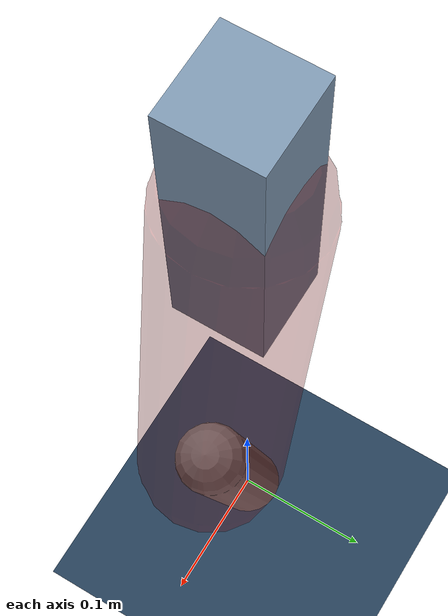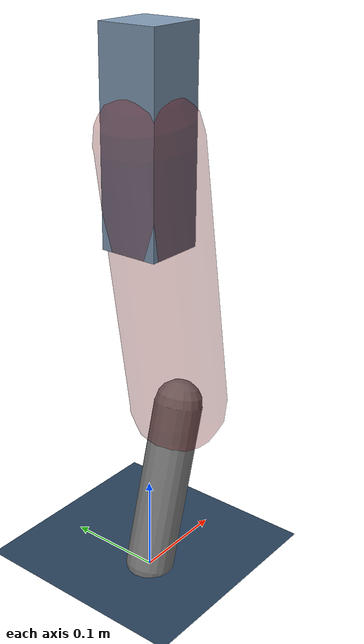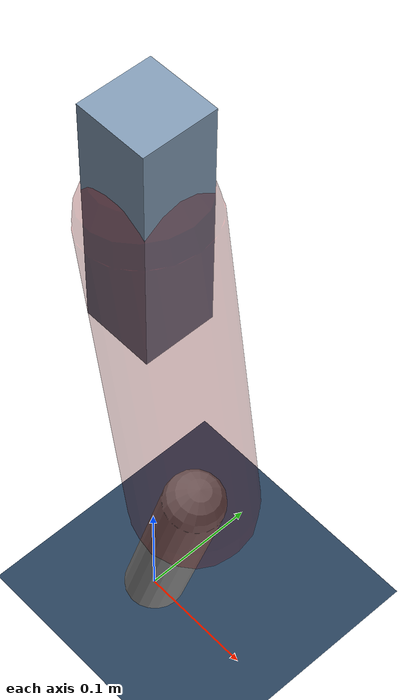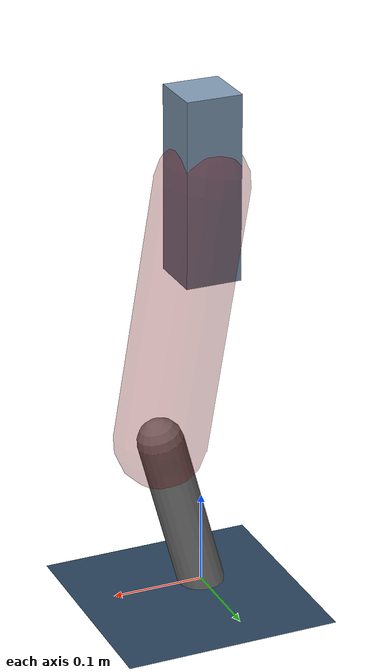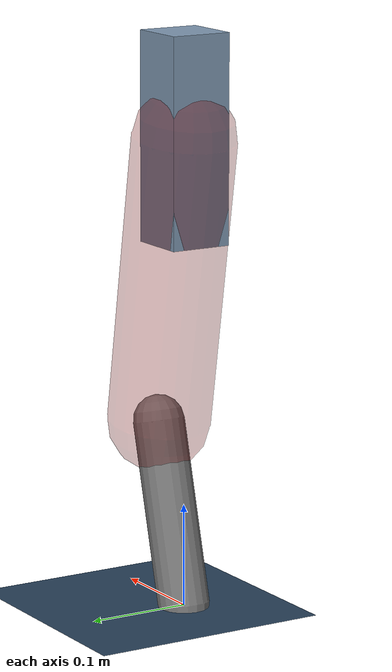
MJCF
<mujoco model="Hopper2D">
	<compiler inertiafromgeom="true" angle="radian" />
	<option timestep="0.001" integrator="implicit" cone="elliptic" solver="Newton" tolerance="1e-10" />

	<default>
		<geom contype="1" conaffinity="1" condim="3" friction="2 0.005 0.0001" solref="0.005 1" />
		<joint limited="true" damping="0.1" />
	</default>

	<asset>
		<texture name="skybox" type="skybox" builtin="gradient" rgb1=".4 .6 .8" rgb2="0 0 0" width="800" height="800" />
		<texture name="grid" type="2d" builtin="checker" rgb1=".1 .2 .3" rgb2=".2 .3 .4" width="300" height="300" mark="edge" markrgb=".2 .3 .4" />
		<material name="ground" texture="grid" texrepeat="1 1" texuniform="true" reflectance="0.1" />
		<material name="leg" rgba="0.5 0.6 0.7 1" />
	</asset>

	<worldbody>

		<geom name="floor" type="plane" size="5 5 0.25" material="ground" />

		<light directional="false" diffuse="0.8 0.8 0.8" specular="0.3 0.3 0.3" pos="0 0 2" dir="0 0 -1" />
		<light mode="targetbodycom" target="base" directional="false" diffuse="0.8 0.8 0.8" specular="0.3 0.3 0.3" pos="0 0 2" dir="0 0 -1" />

		<camera name="fixed" pos="0 -2 1" xyaxes="1 0 0 0 0 1" />
		<camera name="tracking" mode="trackcom" pos="0 -3 1" />

		<body name="root" pos="0 0 0.4546938214348778">
			<joint name="slide_x" type="slide" axis="1 0 0" range="-100 100" />
			<joint name="slide_z" type="slide" axis="0 0 1" range="0 10" />

			<body name="base" pos="0 0 0">
				<geom name="torso" type="box" size="0.03 0.03 0.1" mass="1.98" material="leg" />

				<body name="link1" pos="0 0 0" euler="0 1.406347680734463 0">
					<joint type="hinge" axis="0 -1 0" pos="0 0 0" name="hinge1" limited="true" range="-3.14 3.14" stiffness="0" damping="0.1" />
					<geom name="thigh" type="capsule" fromto="0 0 0 0.284915694172313 0 0" size="0.05" rgba="0.5 0 0 0.3" mass="0.9481808048480138" />

					<body name="link2" pos="0.284915694172313 0 0" euler="0 0.4268993961907409 0">
						<joint type="hinge" axis="0 -1 0" pos="0 0 0" name="hinge2" limited="true" range="-3.14 3.14" stiffness="0" damping="0.1" />
						<geom name="shank" type="capsule" fromto="0 0 0 0.1797781272625648 0 0" size="0.025" mass="0.3837003145363084" />

					</body>
				</body>
			</body>
		</body>
	</worldbody>

	<actuator>
		<motor name="torque1" joint="hinge1" ctrlrange="-57.02756387142087 57.02756387142087" ctrllimited="true" gear="1" />
		<motor name="torque2" joint="hinge2" ctrlrange="-78.37873998539858 78.37873998539858" ctrllimited="true" gear="1" />
	</actuator>
</mujoco>
